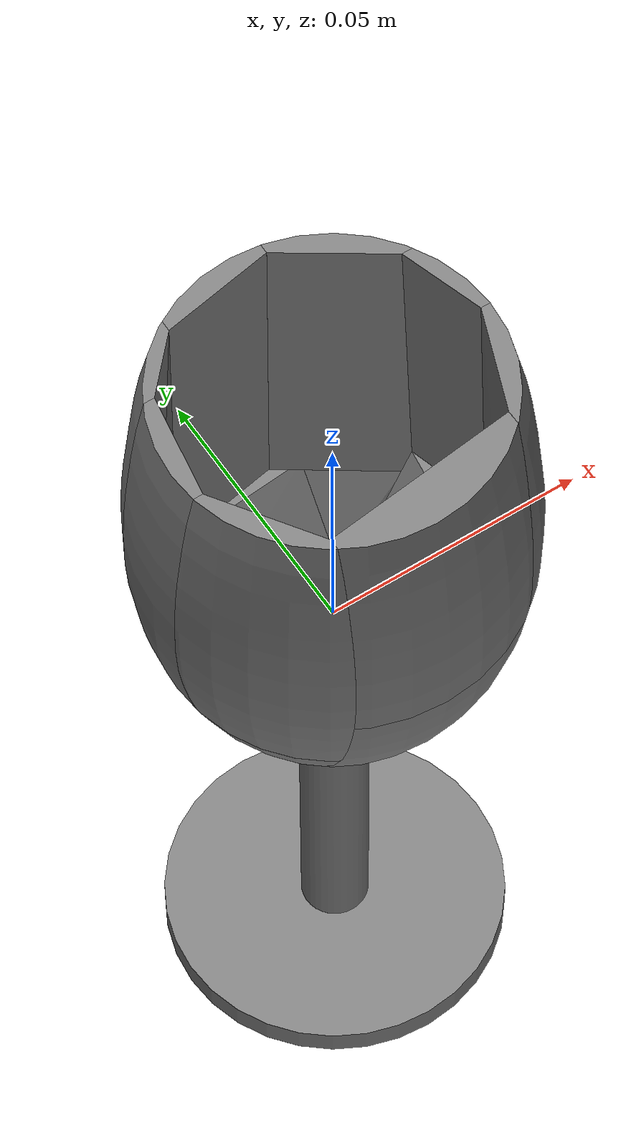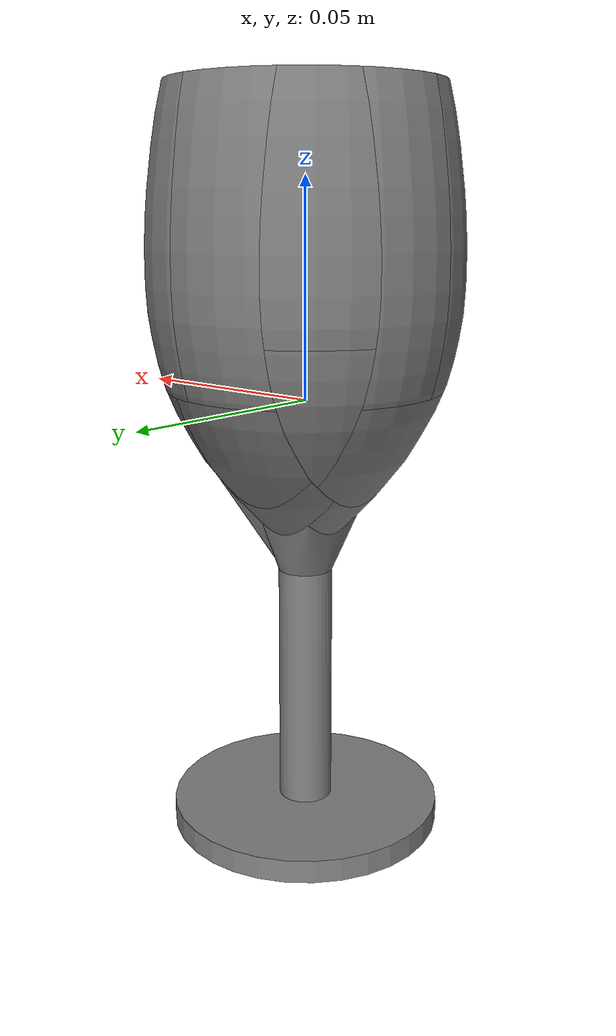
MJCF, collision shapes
<mujoco model="wine_glass">
  <compiler meshdir="."/>

  <asset>
    <mesh name="wine_glass" file="wine_glass.stl"/>
    <mesh name="wine_glass_collision_hull_000" file="wine_glass_collision_hull_000.stl"/>
    <mesh name="wine_glass_collision_hull_001" file="wine_glass_collision_hull_001.stl"/>
    <mesh name="wine_glass_collision_hull_002" file="wine_glass_collision_hull_002.stl"/>
    <mesh name="wine_glass_collision_hull_003" file="wine_glass_collision_hull_003.stl"/>
    <mesh name="wine_glass_collision_hull_004" file="wine_glass_collision_hull_004.stl"/>
    <mesh name="wine_glass_collision_hull_005" file="wine_glass_collision_hull_005.stl"/>
    <mesh name="wine_glass_collision_hull_006" file="wine_glass_collision_hull_006.stl"/>
    <mesh name="wine_glass_collision_hull_007" file="wine_glass_collision_hull_007.stl"/>
    <mesh name="wine_glass_collision_hull_008" file="wine_glass_collision_hull_008.stl"/>
    <mesh name="wine_glass_collision_hull_009" file="wine_glass_collision_hull_009.stl"/>
    <mesh name="wine_glass_collision_hull_010" file="wine_glass_collision_hull_010.stl"/>
    <mesh name="wine_glass_collision_hull_011" file="wine_glass_collision_hull_011.stl"/>
    <mesh name="wine_glass_collision_hull_012" file="wine_glass_collision_hull_012.stl"/>
    <mesh name="wine_glass_collision_hull_013" file="wine_glass_collision_hull_013.stl"/>
    <mesh name="wine_glass_collision_hull_014" file="wine_glass_collision_hull_014.stl"/>
    <mesh name="wine_glass_collision_hull_015" file="wine_glass_collision_hull_015.stl"/>
    <mesh name="wine_glass_collision_hull_016" file="wine_glass_collision_hull_016.stl"/>
    <mesh name="wine_glass_collision_hull_017" file="wine_glass_collision_hull_017.stl"/>
    <mesh name="wine_glass_collision_hull_018" file="wine_glass_collision_hull_018.stl"/>
    <mesh name="wine_glass_collision_hull_019" file="wine_glass_collision_hull_019.stl"/>
    <mesh name="wine_glass_collision_hull_020" file="wine_glass_collision_hull_020.stl"/>
    <mesh name="wine_glass_collision_hull_021" file="wine_glass_collision_hull_021.stl"/>
  </asset>

  <worldbody>
    <body name="object">
      <freejoint name="object_joint"/>
      <geom name="object_visual" type="mesh" mesh="wine_glass"
            contype="0" conaffinity="0" group="2" rgba="0.9 0.9 0.8 1" mass="0"/>
      <geom name="wine_glass_collision_hull_000_collision" type="mesh" mesh="wine_glass_collision_hull_000"
            mass="0.0023" condim="6" friction="1.0 0.002 0.002" priority="1"/>
      <geom name="wine_glass_collision_hull_001_collision" type="mesh" mesh="wine_glass_collision_hull_001"
            mass="0.0023" condim="6" friction="1.0 0.002 0.002" priority="1"/>
      <geom name="wine_glass_collision_hull_002_collision" type="mesh" mesh="wine_glass_collision_hull_002"
            mass="0.0023" condim="6" friction="1.0 0.002 0.002" priority="1"/>
      <geom name="wine_glass_collision_hull_003_collision" type="mesh" mesh="wine_glass_collision_hull_003"
            mass="0.0023" condim="6" friction="1.0 0.002 0.002" priority="1"/>
      <geom name="wine_glass_collision_hull_004_collision" type="mesh" mesh="wine_glass_collision_hull_004"
            mass="0.0023" condim="6" friction="1.0 0.002 0.002" priority="1"/>
      <geom name="wine_glass_collision_hull_005_collision" type="mesh" mesh="wine_glass_collision_hull_005"
            mass="0.0023" condim="6" friction="1.0 0.002 0.002" priority="1"/>
      <geom name="wine_glass_collision_hull_006_collision" type="mesh" mesh="wine_glass_collision_hull_006"
            mass="0.0023" condim="6" friction="1.0 0.002 0.002" priority="1"/>
      <geom name="wine_glass_collision_hull_007_collision" type="mesh" mesh="wine_glass_collision_hull_007"
            mass="0.0023" condim="6" friction="1.0 0.002 0.002" priority="1"/>
      <geom name="wine_glass_collision_hull_008_collision" type="mesh" mesh="wine_glass_collision_hull_008"
            mass="0.0023" condim="6" friction="1.0 0.002 0.002" priority="1"/>
      <geom name="wine_glass_collision_hull_009_collision" type="mesh" mesh="wine_glass_collision_hull_009"
            mass="0.0023" condim="6" friction="1.0 0.002 0.002" priority="1"/>
      <geom name="wine_glass_collision_hull_010_collision" type="mesh" mesh="wine_glass_collision_hull_010"
            mass="0.0023" condim="6" friction="1.0 0.002 0.002" priority="1"/>
      <geom name="wine_glass_collision_hull_011_collision" type="mesh" mesh="wine_glass_collision_hull_011"
            mass="0.0023" condim="6" friction="1.0 0.002 0.002" priority="1"/>
      <geom name="wine_glass_collision_hull_012_collision" type="mesh" mesh="wine_glass_collision_hull_012"
            mass="0.0023" condim="6" friction="1.0 0.002 0.002" priority="1"/>
      <geom name="wine_glass_collision_hull_013_collision" type="mesh" mesh="wine_glass_collision_hull_013"
            mass="0.0023" condim="6" friction="1.0 0.002 0.002" priority="1"/>
      <geom name="wine_glass_collision_hull_014_collision" type="mesh" mesh="wine_glass_collision_hull_014"
            mass="0.0023" condim="6" friction="1.0 0.002 0.002" priority="1"/>
      <geom name="wine_glass_collision_hull_015_collision" type="mesh" mesh="wine_glass_collision_hull_015"
            mass="0.0023" condim="6" friction="1.0 0.002 0.002" priority="1"/>
      <geom name="wine_glass_collision_hull_016_collision" type="mesh" mesh="wine_glass_collision_hull_016"
            mass="0.0023" condim="6" friction="1.0 0.002 0.002" priority="1"/>
      <geom name="wine_glass_collision_hull_017_collision" type="mesh" mesh="wine_glass_collision_hull_017"
            mass="0.0023" condim="6" friction="1.0 0.002 0.002" priority="1"/>
      <geom name="wine_glass_collision_hull_018_collision" type="mesh" mesh="wine_glass_collision_hull_018"
            mass="0.0023" condim="6" friction="1.0 0.002 0.002" priority="1"/>
      <geom name="wine_glass_collision_hull_019_collision" type="mesh" mesh="wine_glass_collision_hull_019"
            mass="0.0023" condim="6" friction="1.0 0.002 0.002" priority="1"/>
      <geom name="wine_glass_collision_hull_020_collision" type="mesh" mesh="wine_glass_collision_hull_020"
            mass="0.0023" condim="6" friction="1.0 0.002 0.002" priority="1"/>
      <geom name="wine_glass_collision_hull_021_collision" type="mesh" mesh="wine_glass_collision_hull_021"
            mass="0.0023" condim="6" friction="1.0 0.002 0.002" priority="1"/>
    </body>
  </worldbody>
</mujoco>
